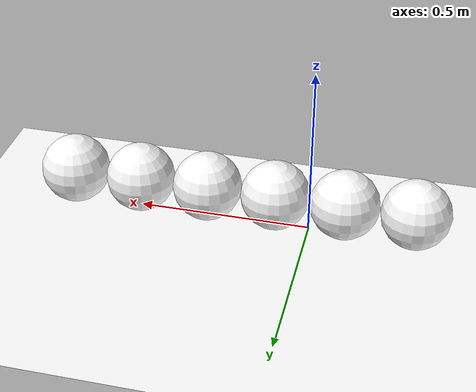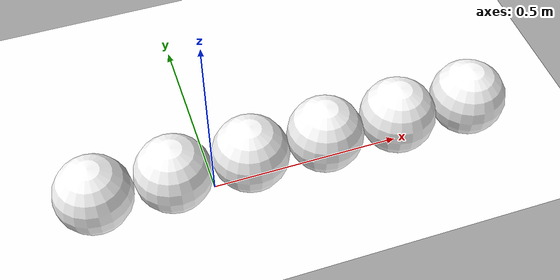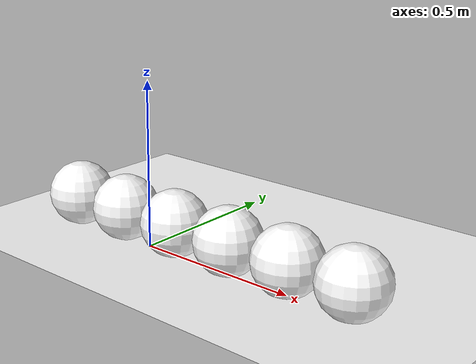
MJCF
<mujoco>
  <compiler autolimits="true"/>

  <option density="1000" timestep="0.05" integrator="implicitfast" />

  <default>
    <geom type="sphere" size="0.1" rgba="1 1 1 1"/>
    <joint type="slide" axis="0 0 1"/>
    <general ctrlrange="-1 1"/>
    <default class="filter">
      <general dyntype="filter" gear="100"/>
    </default>
    <default class="filterexact">
      <general dyntype="filterexact" gear="100"/>
    </default>
    <default class="integrator">
      <general dyntype="integrator" actrange="0 2" gear="100"/>
      <default class="integrator_actearly">
        <general actearly="true"/>
      </default>
    </default>
  </default>

  <worldbody>
    <geom type="plane" size="10 10 .1" rgba="1 1 1 1"/>
    <light pos="0 0 20"/>

    <body pos="-0.3  0 0.1"><joint name="filter_actearly"/><geom/></body>
    <body pos="-0.1 0 0.1"><joint name="filter"/><geom/></body>

    <body pos="0.1  0 0.1"><joint name="filterexact_actearly"/><geom/></body>
    <body pos="0.3 0 0.1"><joint name="filterexact"/><geom/></body>

    <body pos=" 0.5 0 0.1"><joint name="integrator_actearly"/><geom/></body>
    <body pos=" 0.7 0 0.1"><joint name="integrator"/><geom/></body>
  </worldbody>

  <actuator>
    <general class="filter" name="filter_actearly" joint="filter_actearly" actearly="true"/>
    <general class="filter" name="filter" joint="filter" actearly="false"/>

    <general class="filterexact" name="filterexact_actearly" joint="filterexact_actearly" actearly="true"/>
    <general class="filterexact" name="filterexact" joint="filterexact" actearly="false"/>

    <general class="integrator_actearly" name="integrator_actearly" joint="integrator_actearly"/>
    <general class="integrator" name="integrator" joint="integrator" actearly="false"/>
  </actuator>
</mujoco>
